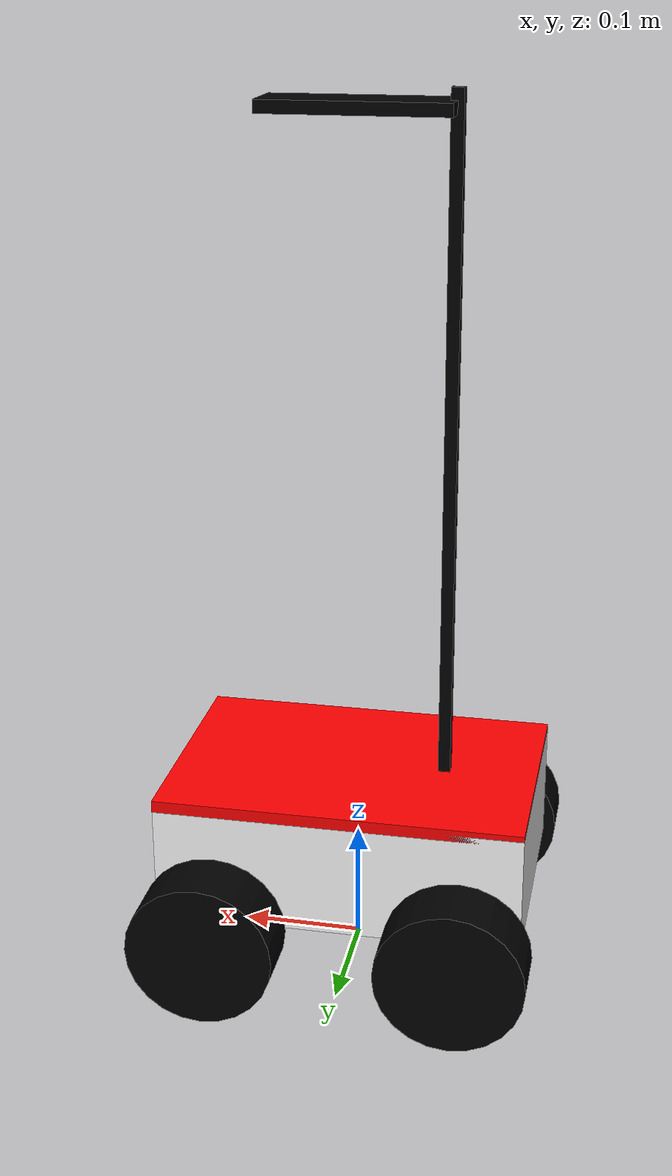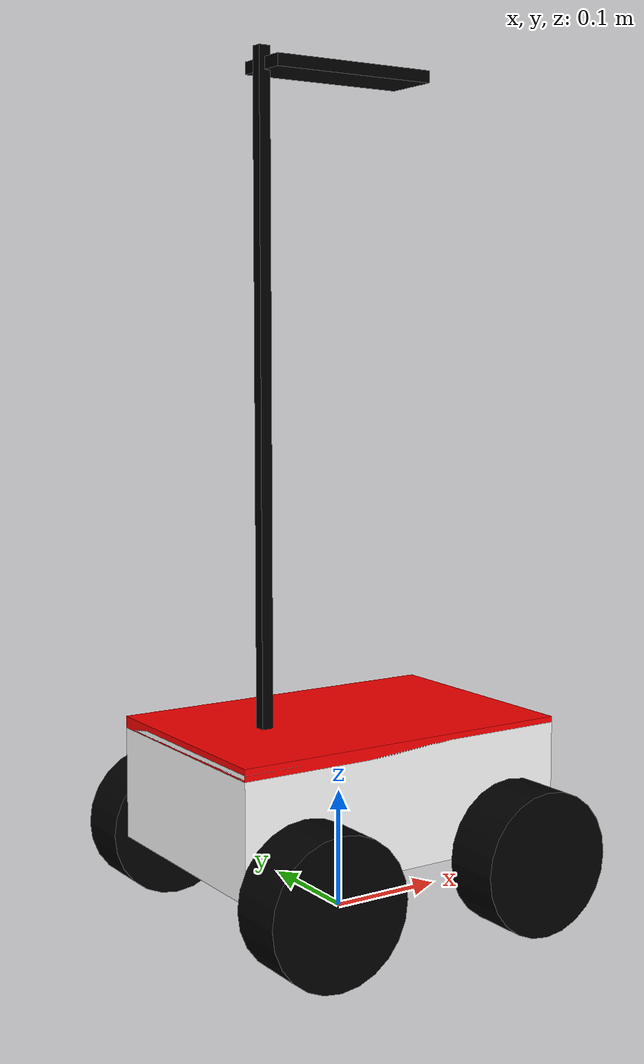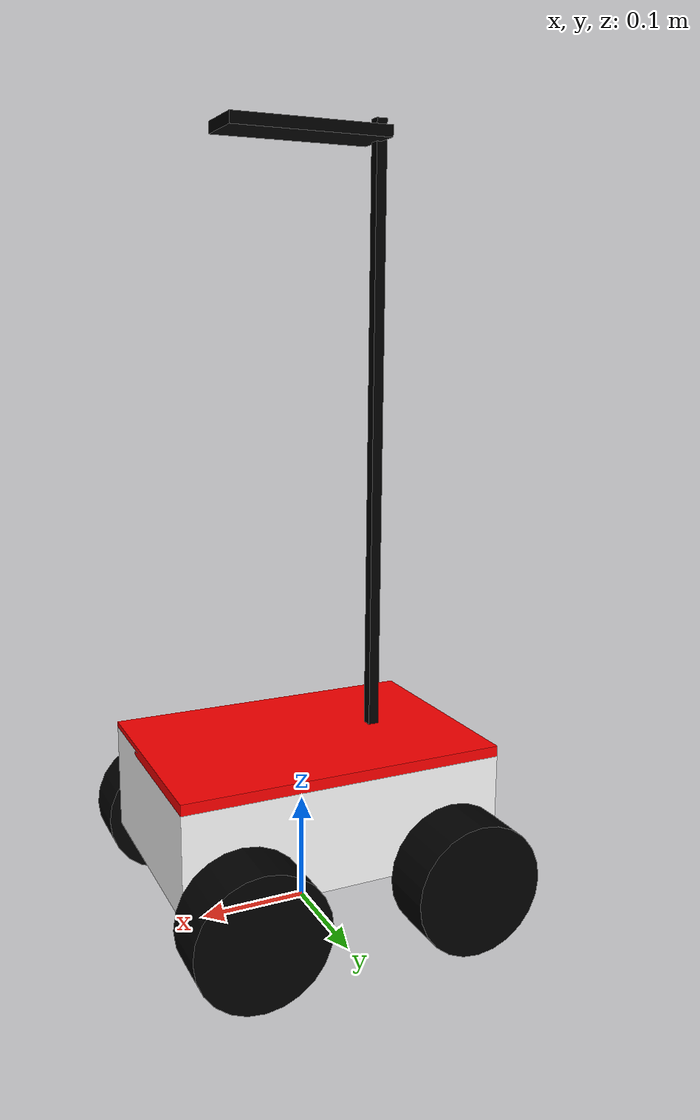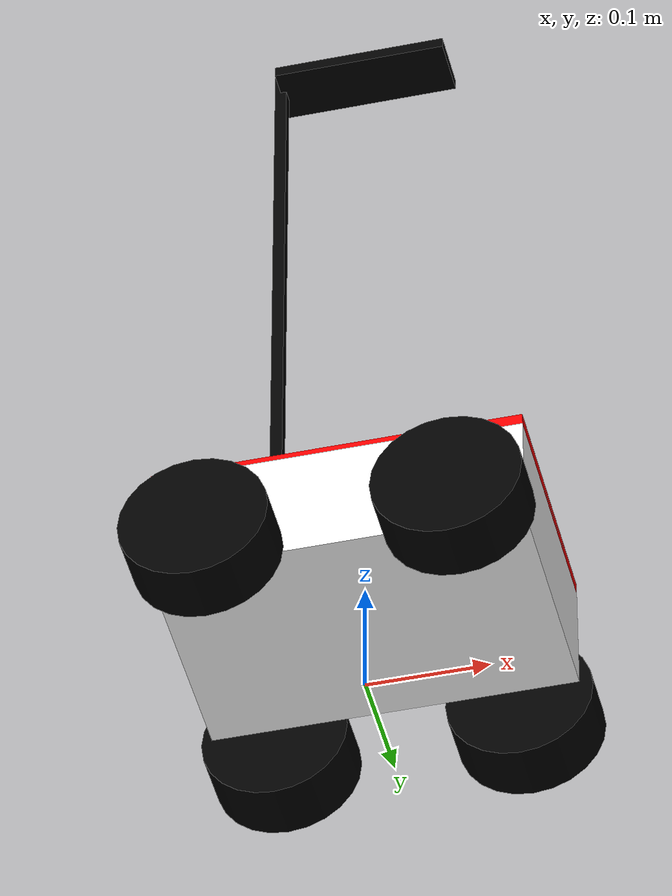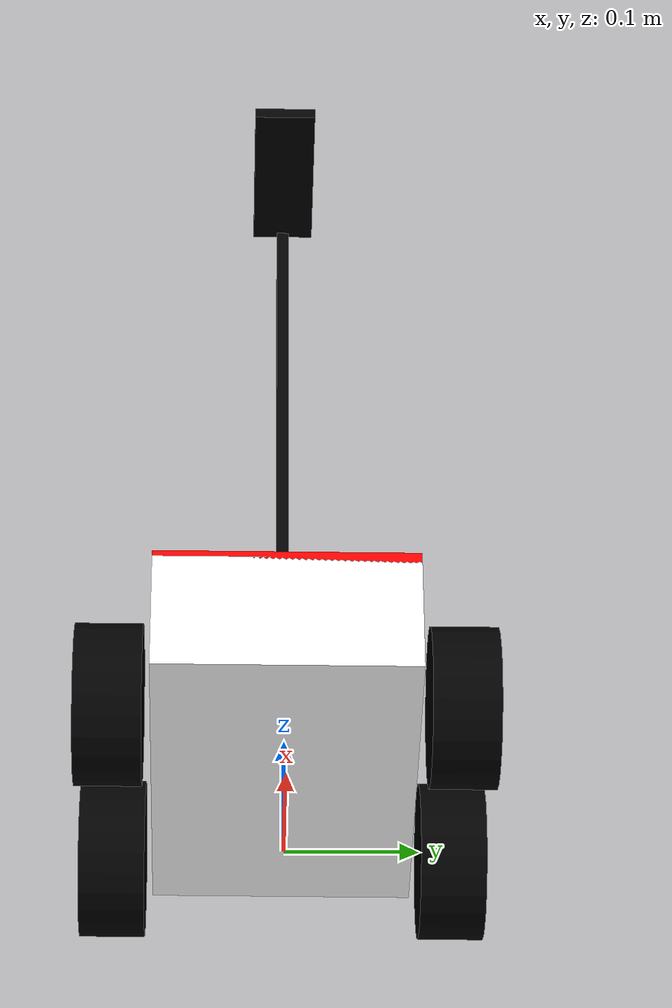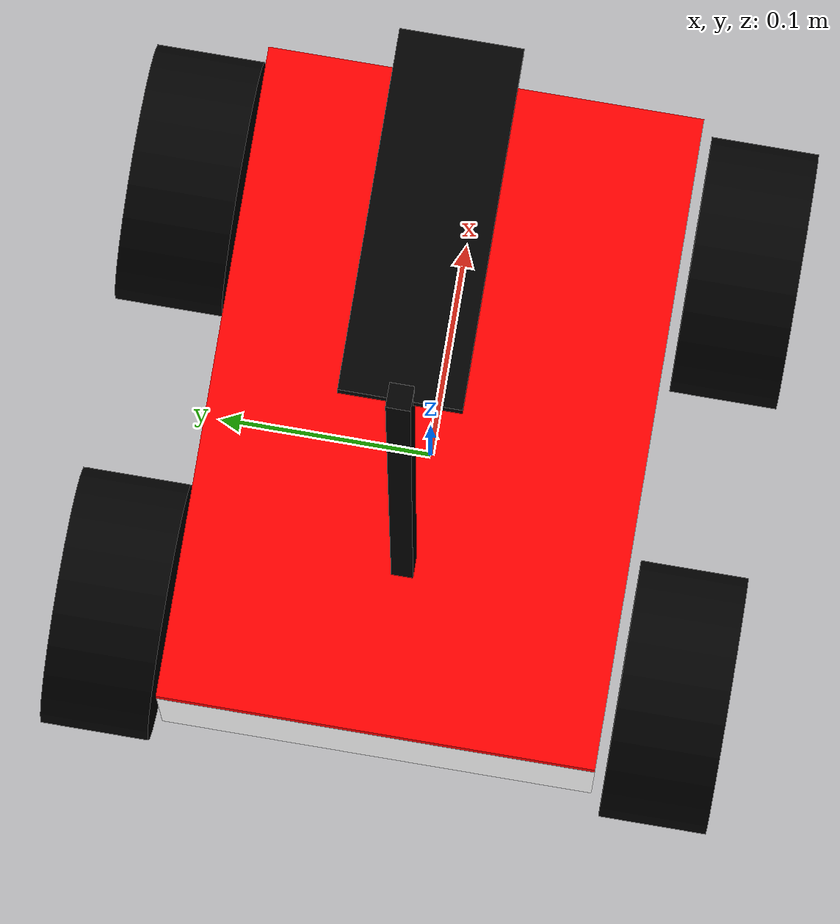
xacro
<?xml version="1.0"?>

<robot name="robot" xmlns:xacro="http://www.ros.org/wiki/xacro">

    <xacro:property name="length_wheel" value="0.05" />
    <xacro:property name="radius_wheel" value="0.06" />
    <xacro:property name="PI" value="3.1415926"/>
    <xacro:macro name="default_inertial" params="mass">
        <inertial>
            <mass value="${mass}" />
            <inertia ixx="0.01" ixy="0.0" ixz="0.0"
                    iyy="0.01" iyz="0.0" izz="0.01" />
        </inertial>
    </xacro:macro>

    <link name="base_footprint"/>

    <joint name="base_to_footprint" type="fixed">
        <parent link="base_footprint"/>
        <child link="base_link"/>
        <origin rpy="0 0 0" xyz="0 0 0.06"/>
    </joint>

    <link name="base_link">
        <visual>
            <geometry>
                <box size="0.2 0.3 0.1"/>
            </geometry>
            <origin rpy="0 0 ${PI/2}" xyz="0 0 0.05"/>
            <material name="white">
                <color rgba="1 1 1 1"/>
            </material>
        </visual>
        <collision>
            <geometry>
                <box size="0.2 0.3 0.1"/>
            </geometry>
        </collision>
        <xacro:default_inertial mass="8.2"/>
    </link>

    <link name="gimbal_yaw">
        <visual>
            <geometry>
                <box size="0.2 0.3 0.01"/>
            </geometry>
            <origin rpy="0 0 ${PI/2}" xyz="0 0 0.05"/>
            <material name="red">
                <color rgba="1 0 0 1"/>
            </material>
        </visual>
        <collision>
            <geometry>
                <box size="0.2 0.3 0.01"/>
            </geometry>
        </collision>
        <xacro:default_inertial mass="8.2"/>
    </link>

    <joint name="base_to_gimbal_yaw" type="continuous">
        <parent link="base_link"/>
        <child link="gimbal_yaw"/>
        <origin rpy="0 0 0" xyz="0 0 0.05"/>
    </joint>

    <link name="wheel_1">
        <visual>
            <geometry>
                <cylinder length="${length_wheel}" radius="${radius_wheel}"/>
            </geometry>
            <origin rpy="0 0 0" xyz="0 0 0"/>
            <material name="black">
                <color rgba="0 0 0 1"/>
            </material>
        </visual>
        <collision>
            <geometry>
                <cylinder length="${length_wheel}" radius="${radius_wheel}"/>
            </geometry>
        </collision>
        <mu1>0.5</mu1>
        <mu2>0.5</mu2>
        <xacro:default_inertial mass="0.5"/>
    </link>

    <link name="wheel_2">
        <visual>
            <geometry>
                <cylinder length="${length_wheel}" radius="${radius_wheel}"/>
            </geometry>
            <origin rpy="0 0 0" xyz="0 0 0"/>
            <material name="black"/>
        </visual>
        <collision>
            <geometry>
                <cylinder length="${length_wheel}" radius="${radius_wheel}"/>
            </geometry>
        </collision>
        <mu1>0.5</mu1>
        <mu2>0.5</mu2>
        <xacro:default_inertial mass="0.5"/>
    </link>

    <link name="wheel_3">
        <visual>
            <geometry>
                <cylinder length="${length_wheel}" radius="${radius_wheel}"/>
            </geometry>
            <origin rpy="0 0 0" xyz="0 0 0"/>
            <material name="black"/>
        </visual>
        <collision>
            <geometry>
                <cylinder length="${length_wheel}" radius="${radius_wheel}"/>
            </geometry>
        </collision>
        <mu1>0.5</mu1>
        <mu2>0.5</mu2>
        <xacro:default_inertial mass="0.5"/>
    </link>

    <link name="wheel_4">
        <visual>
            <geometry>
                <cylinder length="${length_wheel}" radius="${radius_wheel}"/>
            </geometry>
            <origin rpy="0 0 0" xyz="0 0 0" />
            <material name="black"/>
        </visual>
        <collision>
            <geometry>
                <cylinder length="${length_wheel}" radius="${radius_wheel}"/>
            </geometry>
        </collision>
        <mu1>0.5</mu1>
        <mu2>0.5</mu2>
        <xacro:default_inertial mass="0.5"/>
    </link>

    <link name="support_struxture">
        <visual>
            <geometry>
                <box size="0.01 0.01 0.6"/>
            </geometry>
            <origin rpy="0 0 0" xyz="0 0 0" />
            <material name="black"/>
        </visual>
        <collision>
            <geometry>
                <box size="0.05 0.05 0.4"/>
            </geometry>
        </collision>
        <xacro:default_inertial mass="0.5"/>
    </link>

    <link name="support_plate">
        <visual>
            <geometry>
                <box size="0.14624 0.05 0.01"/>
            </geometry>
            <origin rpy="0 0 0" xyz="0 0 0" />
            <material name="black"/>
        </visual>
        <collision>
            <geometry>
                <box size="0.2 0.2 0.01"/>
            </geometry>
        </collision>
        <xacro:default_inertial mass="0.3"/>
    </link>

    <joint name="base_to_wheel1" type="continuous">
        <parent link="base_link"/>
        <child link="wheel_1"/>
        <origin rpy="${-PI/2} 0 0" xyz="0.1 0.13 0"/>
        <axis xyz="0 0 1" />
    </joint>

    <joint name="base_to_wheel2" type="continuous">
        <axis xyz="0 0 1" />
        <anchor xyz="0 0 0" />
        <limit effort="100" velocity="100" />
        <parent link="base_link"/>
        <child link="wheel_2"/>
        <origin rpy="${-PI/2} 0 0" xyz="-0.1 0.13 0"/>
    </joint>

    <joint name="base_to_wheel3" type="continuous">
        <parent link="base_link"/>
        <axis xyz="0 0 1" />
        <child link="wheel_3"/>
        <origin rpy="${-PI/2} 0 0" xyz="0.1 -0.13 0"/>
    </joint>

    <joint name="base_to_wheel4" type="continuous">
        <parent link="base_link"/>
        <axis xyz="0 0 1" />
        <child link="wheel_4"/>
        <origin rpy="${-PI/2} 0 0" xyz="-0.1 -0.13 0"/>
    </joint>

    <joint name="base_to_support_struxture" type="fixed">
        <parent link="base_link"/>
        <child link="support_struxture"/>
        <origin rpy="0 0 0" xyz="-0.07312 0.0 0.352"/>
    </joint>

    <joint name="base_to_support_plate" type="fixed">
        <parent link="base_link"/>
        <child link="support_plate"/>
        <origin rpy="0 0 0" xyz="0.0 0.0 0.638"/>
    </joint>

    <!-- Livox-Mid360  -->
    <link name="livox_frame">

    </link>

    <joint name="livox_joint" type="fixed">
        <origin xyz="-0.14 0.0 0.47" rpy="0 0 0"/>
      <parent link="base_link"/>
      <child link="livox_frame"/>
    </joint>

    <link name="livox_frame1">

    </link>
    <joint name="livox_joint1" type="fixed">
        <origin xyz="0.0 0.0 0.558" rpy="0 0 0"/>
      <parent link="base_link"/>
      <child link="livox_frame1"/>
    </joint>

    <!-- gazebo插件设置相关 -->
</robot>
